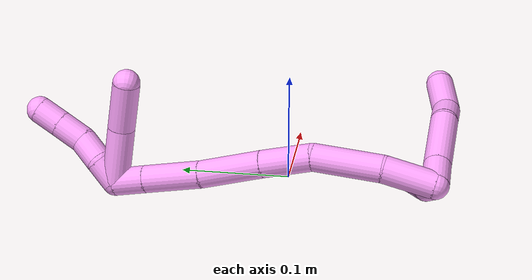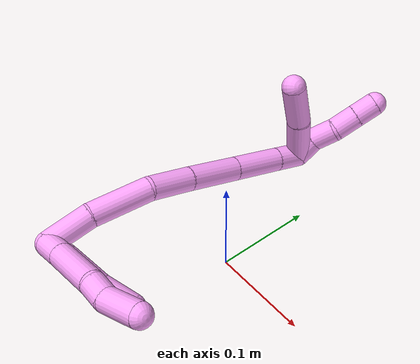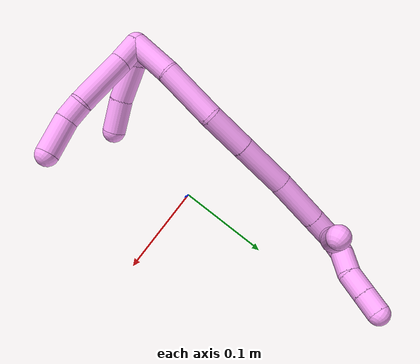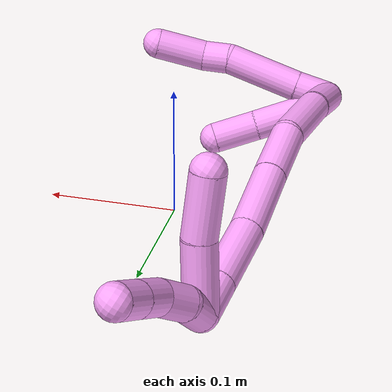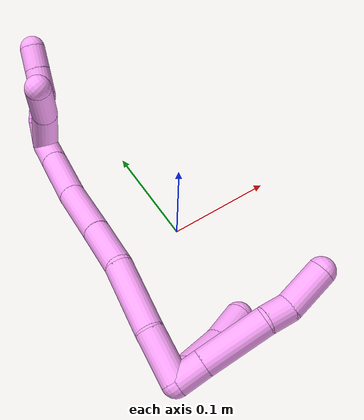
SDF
<sdf version="1.7">
 <world name="default">
  <model name="photoneo_s_sensor">
   <static>1</static>
   <pose>0 0 2 1.57079 1.57079 3.14159</pose>
   <link name="link">
    <inertial><mass>0.1</mass></inertial>
    <sensor name="sensor" type="depth">
     <update_rate>30</update_rate>
     <camera>
      <horizontal_fov>1.22</horizontal_fov>
      <image><width>1920</width><height>1200</height><format>B8G8R8</format></image>
      <clip><near>0.1</near><far>4</far></clip>
      <depth_camera><output>points</output></depth_camera>
     </camera>
     <plugin name="camera_plugin" filename="libgazebo_ros_depth_camera.so">
      <baseline>0.2</baseline>
      <alwaysOn>1</alwaysOn>
      <updateRate>0.0</updateRate>
      <cameraName>camera_ir</cameraName>
      <imageTopicName>/camera/color/image_raw</imageTopicName>
      <cameraInfoTopicName>/camera/color/camera_info</cameraInfoTopicName>
      <depthImageTopicName>/camera/depth/image_raw</depthImageTopicName>
      <depthImageCameraInfoTopicName>/camera/depth/camera_info</depthImageCameraInfoTopicName>
      <pointCloudTopicName>/camera/depth/points</pointCloudTopicName>
      <frameName>fr_optical</frameName>
      <pointCloudCutoff>0.1</pointCloudCutoff>
      <pointCloudCutoffMax>2.0</pointCloudCutoffMax>
      <distortionK1>0</distortionK1>
      <distortionK2>0</distortionK2>
      <distortionK3>0</distortionK3>
      <distortionT1>0</distortionT1>
      <distortionT2>0</distortionT2>
      <CxPrime>0</CxPrime>
      <Cx>0</Cx>
      <Cy>0</Cy>
      <focalLength>0</focalLength>
      <hackBaseline>0</hackBaseline>
     </plugin>
    </sensor>
   </link>
  </model>
  <model name="bin">
   <static>1</static>
   <link name="bottom">
    <collision name="collision-bottom">
     <pose>0 0 -0.01 0 -0 0</pose>
     <geometry><box><size>0.8 0.6 0.02</size></box></geometry>
     <surface>
      <friction><ode><mu>100</mu><mu2>100</mu2></ode></friction>
      <contact><collide_bitmask>65535</collide_bitmask></contact>
     </surface>
    </collision>
   </link>
   <link name="west_wall">
    <collision name="collision-west_wall">
     <pose>-0.41 0 0.1 0 -0 0</pose>
     <geometry><box><size>0.02 0.6 0.2</size></box></geometry>
     <surface>
      <friction><ode><mu>100</mu><mu2>100</mu2></ode></friction>
      <contact><collide_bitmask>65535</collide_bitmask></contact>
     </surface>
    </collision>
   </link>
   <link name="east_wall">
    <collision name="collision-east_wall">
     <pose>0.41 0 0.1 0 -0 0</pose>
     <geometry><box><size>0.02 0.6 0.2</size></box></geometry>
     <surface>
      <friction><ode><mu>100</mu><mu2>100</mu2></ode></friction>
      <contact><collide_bitmask>65535</collide_bitmask></contact>
     </surface>
    </collision>
   </link>
   <link name="south_wall">
    <collision name="collision-south_wall">
     <pose>0 -0.31 0.1 0 -0 0</pose>
     <geometry><box><size>0.8 0.02 0.2</size></box></geometry>
     <surface>
      <friction><ode><mu>100</mu><mu2>100</mu2></ode></friction>
      <contact><collide_bitmask>65535</collide_bitmask></contact>
     </surface>
    </collision>
   </link>
   <link name="north_wall">
    <collision name="collision-north_wall">
     <pose>0 0.31 0.1 0 -0 0</pose>
     <geometry><box><size>0.8 0.02 0.2</size></box></geometry>
     <surface>
      <friction><ode><mu>100</mu><mu2>100</mu2></ode></friction>
      <contact><collide_bitmask>65535</collide_bitmask></contact>
     </surface>
    </collision>
   </link>
  </model>
  <model name="4">
   <static>0</static>
   <link name="4">
    <collision name="collision-cylinder-e_1_2_8">
     <pose>0.002772 -0.002214 0.012858 0.170477 0.209321 0.017951</pose>
     <geometry><cylinder><radius>0.0125</radius><length>0.026677</length></cylinder></geometry>
     <surface>
      <friction><ode><mu>1.16</mu><mu2>1.16</mu2><slip1>0</slip1><slip2>0</slip2></ode></friction>
      <contact><ode><kp>1e+06</kp><kd>1</kd><max_vel>0</max_vel><min_depth>0.001</min_depth></ode></contact>
     </surface>
    </collision>
    <visual name="visual-cylinder-e_1_2_8">
     <pose>0.002772 -0.002214 0.012858 0.170477 0.209321 0.017951</pose>
     <geometry><cylinder><radius>0.0125</radius><length>0.026677</length></cylinder></geometry>
     <material><ambient>1 0.65098 0.996078 1</ambient></material>
    </visual>
    <collision name="collision-cylinder-e_2_8_9">
     <pose>0.010136 -0.009548 0.055001 0.173111 0.153285 0.013327</pose>
     <geometry><cylinder><radius>0.0125</radius><length>0.060163</length></cylinder></geometry>
     <surface>
      <friction><ode><mu>1.16</mu><mu2>1.16</mu2><slip1>0</slip1><slip2>0</slip2></ode></friction>
      <contact><ode><kp>1e+06</kp><kd>1</kd><max_vel>0</max_vel><min_depth>0.001</min_depth></ode></contact>
     </surface>
    </collision>
    <visual name="visual-cylinder-e_2_8_9">
     <pose>0.010136 -0.009548 0.055001 0.173111 0.153285 0.013327</pose>
     <geometry><cylinder><radius>0.0125</radius><length>0.060163</length></cylinder></geometry>
     <material><ambient>1 0.65098 0.996078 1</ambient></material>
    </visual>
    <collision name="collision-cylinder-e_3_9_10">
     <pose>0.018849 -0.018378 0.094191 0.358365 0.371411 0.06803</pose>
     <geometry><cylinder><radius>0.0125</radius><length>0.022702</length></cylinder></geometry>
     <surface>
      <friction><ode><mu>1.16</mu><mu2>1.16</mu2><slip1>0</slip1><slip2>0</slip2></ode></friction>
      <contact><ode><kp>1e+06</kp><kd>1</kd><max_vel>0</max_vel><min_depth>0.001</min_depth></ode></contact>
     </surface>
    </collision>
    <visual name="visual-cylinder-e_3_9_10">
     <pose>0.018849 -0.018378 0.094191 0.358365 0.371411 0.06803</pose>
     <geometry><cylinder><radius>0.0125</radius><length>0.022702</length></cylinder></geometry>
     <material><ambient>1 0.65098 0.996078 1</ambient></material>
    </visual>
    <collision name="collision-cylinder-e_4_10_6">
     <pose>0.029499 -0.021905 0.123241 -0.009555 0.328722 -0.001585</pose>
     <geometry><cylinder><radius>0.0125</radius><length>0.040458</length></cylinder></geometry>
     <surface>
      <friction><ode><mu>1.16</mu><mu2>1.16</mu2><slip1>0</slip1><slip2>0</slip2></ode></friction>
      <contact><ode><kp>1e+06</kp><kd>1</kd><max_vel>0</max_vel><min_depth>0.001</min_depth></ode></contact>
     </surface>
    </collision>
    <visual name="visual-cylinder-e_4_10_6">
     <pose>0.029499 -0.021905 0.123241 -0.009555 0.328722 -0.001585</pose>
     <geometry><cylinder><radius>0.0125</radius><length>0.040458</length></cylinder></geometry>
     <material><ambient>1 0.65098 0.996078 1</ambient></material>
    </visual>
    <collision name="collision-cylinder-e_1_2_11">
     <pose>0.009284 -0.001929 0.004482 0.406489 1.08687 0.247728</pose>
     <geometry><cylinder><radius>0.0125</radius><length>0.020976</length></cylinder></geometry>
     <surface>
      <friction><ode><mu>1.16</mu><mu2>1.16</mu2><slip1>0</slip1><slip2>0</slip2></ode></friction>
      <contact><ode><kp>1e+06</kp><kd>1</kd><max_vel>0</max_vel><min_depth>0.001</min_depth></ode></contact>
     </surface>
    </collision>
    <visual name="visual-cylinder-e_1_2_11">
     <pose>0.009284 -0.001929 0.004482 0.406489 1.08687 0.247728</pose>
     <geometry><cylinder><radius>0.0125</radius><length>0.020976</length></cylinder></geometry>
     <material><ambient>1 0.65098 0.996078 1</ambient></material>
    </visual>
    <collision name="collision-cylinder-e_2_11_12">
     <pose>0.034191 -0.009688 0.022367 0.410249 0.818702 0.180042</pose>
     <geometry><cylinder><radius>0.0125</radius><length>0.042789</length></cylinder></geometry>
     <surface>
      <friction><ode><mu>1.16</mu><mu2>1.16</mu2><slip1>0</slip1><slip2>0</slip2></ode></friction>
      <contact><ode><kp>1e+06</kp><kd>1</kd><max_vel>0</max_vel><min_depth>0.001</min_depth></ode></contact>
     </surface>
    </collision>
    <visual name="visual-cylinder-e_2_11_12">
     <pose>0.034191 -0.009688 0.022367 0.410249 0.818702 0.180042</pose>
     <geometry><cylinder><radius>0.0125</radius><length>0.042789</length></cylinder></geometry>
     <material><ambient>1 0.65098 0.996078 1</ambient></material>
    </visual>
    <collision name="collision-cylinder-e_3_12_5">
     <pose>0.063547 -0.017727 0.047379 0.188094 0.86025 0.086494</pose>
     <geometry><cylinder><radius>0.0125</radius><length>0.036236</length></cylinder></geometry>
     <surface>
      <friction><ode><mu>1.16</mu><mu2>1.16</mu2><slip1>0</slip1><slip2>0</slip2></ode></friction>
      <contact><ode><kp>1e+06</kp><kd>1</kd><max_vel>0</max_vel><min_depth>0.001</min_depth></ode></contact>
     </surface>
    </collision>
    <visual name="visual-cylinder-e_3_12_5">
     <pose>0.063547 -0.017727 0.047379 0.188094 0.86025 0.086494</pose>
     <geometry><cylinder><radius>0.0125</radius><length>0.036236</length></cylinder></geometry>
     <material><ambient>1 0.65098 0.996078 1</ambient></material>
    </visual>
    <collision name="collision-cylinder-e_1_2_13">
     <pose>0.011272 0.020372 0.004197 -1.36764 0.496637 -0.407553</pose>
     <geometry><cylinder><radius>0.0125</radius><length>0.047316</length></cylinder></geometry>
     <surface>
      <friction><ode><mu>1.16</mu><mu2>1.16</mu2><slip1>0</slip1><slip2>0</slip2></ode></friction>
      <contact><ode><kp>1e+06</kp><kd>1</kd><max_vel>0</max_vel><min_depth>0.001</min_depth></ode></contact>
     </surface>
    </collision>
    <visual name="visual-cylinder-e_1_2_13">
     <pose>0.011272 0.020372 0.004197 -1.36764 0.496637 -0.407553</pose>
     <geometry><cylinder><radius>0.0125</radius><length>0.047316</length></cylinder></geometry>
     <material><ambient>1 0.65098 0.996078 1</ambient></material>
    </visual>
    <collision name="collision-cylinder-e_2_13_14">
     <pose>0.042749 0.064754 0.012927 -1.38417 0.690923 -0.579789</pose>
     <geometry><cylinder><radius>0.0125</radius><length>0.063412</length></cylinder></geometry>
     <surface>
      <friction><ode><mu>1.16</mu><mu2>1.16</mu2><slip1>0</slip1><slip2>0</slip2></ode></friction>
      <contact><ode><kp>1e+06</kp><kd>1</kd><max_vel>0</max_vel><min_depth>0.001</min_depth></ode></contact>
     </surface>
    </collision>
    <visual name="visual-cylinder-e_2_13_14">
     <pose>0.042749 0.064754 0.012927 -1.38417 0.690923 -0.579789</pose>
     <geometry><cylinder><radius>0.0125</radius><length>0.063412</length></cylinder></geometry>
     <material><ambient>1 0.65098 0.996078 1</ambient></material>
    </visual>
    <collision name="collision-cylinder-e_3_14_15">
     <pose>0.081776 0.102758 0.016174 -1.66246 0.92948 -1.00502</pose>
     <geometry><cylinder><radius>0.0125</radius><length>0.046979</length></cylinder></geometry>
     <surface>
      <friction><ode><mu>1.16</mu><mu2>1.16</mu2><slip1>0</slip1><slip2>0</slip2></ode></friction>
      <contact><ode><kp>1e+06</kp><kd>1</kd><max_vel>0</max_vel><min_depth>0.001</min_depth></ode></contact>
     </surface>
    </collision>
    <visual name="visual-cylinder-e_3_14_15">
     <pose>0.081776 0.102758 0.016174 -1.66246 0.92948 -1.00502</pose>
     <geometry><cylinder><radius>0.0125</radius><length>0.046979</length></cylinder></geometry>
     <material><ambient>1 0.65098 0.996078 1</ambient></material>
    </visual>
    <collision name="collision-cylinder-e_4_15_16">
     <pose>0.124297 0.13349 0.012786 -1.69573 0.952158 -1.05781</pose>
     <geometry><cylinder><radius>0.0125</radius><length>0.05818</length></cylinder></geometry>
     <surface>
      <friction><ode><mu>1.16</mu><mu2>1.16</mu2><slip1>0</slip1><slip2>0</slip2></ode></friction>
      <contact><ode><kp>1e+06</kp><kd>1</kd><max_vel>0</max_vel><min_depth>0.001</min_depth></ode></contact>
     </surface>
    </collision>
    <visual name="visual-cylinder-e_4_15_16">
     <pose>0.124297 0.13349 0.012786 -1.69573 0.952158 -1.05781</pose>
     <geometry><cylinder><radius>0.0125</radius><length>0.05818</length></cylinder></geometry>
     <material><ambient>1 0.65098 0.996078 1</ambient></material>
    </visual>
    <collision name="collision-cylinder-e_5_16_17">
     <pose>0.169655 0.166212 0.010908 -1.55676 0.935024 -0.923774</pose>
     <geometry><cylinder><radius>0.0125</radius><length>0.053839</length></cylinder></geometry>
     <surface>
      <friction><ode><mu>1.16</mu><mu2>1.16</mu2><slip1>0</slip1><slip2>0</slip2></ode></friction>
      <contact><ode><kp>1e+06</kp><kd>1</kd><max_vel>0</max_vel><min_depth>0.001</min_depth></ode></contact>
     </surface>
    </collision>
    <visual name="visual-cylinder-e_5_16_17">
     <pose>0.169655 0.166212 0.010908 -1.55676 0.935024 -0.923774</pose>
     <geometry><cylinder><radius>0.0125</radius><length>0.053839</length></cylinder></geometry>
     <material><ambient>1 0.65098 0.996078 1</ambient></material>
    </visual>
    <collision name="collision-cylinder-e_6_17_1">
     <pose>0.203544 0.191116 0.011218 -1.56117 0.940519 -0.932766</pose>
     <geometry><cylinder><radius>0.0125</radius><length>0.030275</length></cylinder></geometry>
     <surface>
      <friction><ode><mu>1.16</mu><mu2>1.16</mu2><slip1>0</slip1><slip2>0</slip2></ode></friction>
      <contact><ode><kp>1e+06</kp><kd>1</kd><max_vel>0</max_vel><min_depth>0.001</min_depth></ode></contact>
     </surface>
    </collision>
    <visual name="visual-cylinder-e_6_17_1">
     <pose>0.203544 0.191116 0.011218 -1.56117 0.940519 -0.932766</pose>
     <geometry><cylinder><radius>0.0125</radius><length>0.030275</length></cylinder></geometry>
     <material><ambient>1 0.65098 0.996078 1</ambient></material>
    </visual>
    <collision name="collision-cylinder-e_1_1_18">
     <pose>0.196326 0.211519 0.025855 -0.668021 -0.809386 0.295115</pose>
     <geometry><cylinder><radius>0.0125</radius><length>0.053731</length></cylinder></geometry>
     <surface>
      <friction><ode><mu>1.16</mu><mu2>1.16</mu2><slip1>0</slip1><slip2>0</slip2></ode></friction>
      <contact><ode><kp>1e+06</kp><kd>1</kd><max_vel>0</max_vel><min_depth>0.001</min_depth></ode></contact>
     </surface>
    </collision>
    <visual name="visual-cylinder-e_1_1_18">
     <pose>0.196326 0.211519 0.025855 -0.668021 -0.809386 0.295115</pose>
     <geometry><cylinder><radius>0.0125</radius><length>0.053731</length></cylinder></geometry>
     <material><ambient>1 0.65098 0.996078 1</ambient></material>
    </visual>
    <collision name="collision-cylinder-e_2_18_4">
     <pose>0.158516 0.233317 0.049976 -0.82298 -0.916965 0.424301</pose>
     <geometry><cylinder><radius>0.0125</radius><length>0.046269</length></cylinder></geometry>
     <surface>
      <friction><ode><mu>1.16</mu><mu2>1.16</mu2><slip1>0</slip1><slip2>0</slip2></ode></friction>
      <contact><ode><kp>1e+06</kp><kd>1</kd><max_vel>0</max_vel><min_depth>0.001</min_depth></ode></contact>
     </surface>
    </collision>
    <visual name="visual-cylinder-e_2_18_4">
     <pose>0.158516 0.233317 0.049976 -0.82298 -0.916965 0.424301</pose>
     <geometry><cylinder><radius>0.0125</radius><length>0.046269</length></cylinder></geometry>
     <material><ambient>1 0.65098 0.996078 1</ambient></material>
    </visual>
    <collision name="collision-cylinder-e_1_1_19">
     <pose>0.216094 0.2102 0.018319 -0.966612 0.025991 -0.013641</pose>
     <geometry><cylinder><radius>0.0125</radius><length>0.024705</length></cylinder></geometry>
     <surface>
      <friction><ode><mu>1.16</mu><mu2>1.16</mu2><slip1>0</slip1><slip2>0</slip2></ode></friction>
      <contact><ode><kp>1e+06</kp><kd>1</kd><max_vel>0</max_vel><min_depth>0.001</min_depth></ode></contact>
     </surface>
    </collision>
    <visual name="visual-cylinder-e_1_1_19">
     <pose>0.216094 0.2102 0.018319 -0.966612 0.025991 -0.013641</pose>
     <geometry><cylinder><radius>0.0125</radius><length>0.024705</length></cylinder></geometry>
     <material><ambient>1 0.65098 0.996078 1</ambient></material>
    </visual>
    <collision name="collision-cylinder-e_2_19_20">
     <pose>0.219788 0.228625 0.034295 -0.7449 0.26994 -0.106007</pose>
     <geometry><cylinder><radius>0.0125</radius><length>0.025294</length></cylinder></geometry>
     <surface>
      <friction><ode><mu>1.16</mu><mu2>1.16</mu2><slip1>0</slip1><slip2>0</slip2></ode></friction>
      <contact><ode><kp>1e+06</kp><kd>1</kd><max_vel>0</max_vel><min_depth>0.001</min_depth></ode></contact>
     </surface>
    </collision>
    <visual name="visual-cylinder-e_2_19_20">
     <pose>0.219788 0.228625 0.034295 -0.7449 0.26994 -0.106007</pose>
     <geometry><cylinder><radius>0.0125</radius><length>0.025294</length></cylinder></geometry>
     <material><ambient>1 0.65098 0.996078 1</ambient></material>
    </visual>
    <collision name="collision-cylinder-e_3_20_21">
     <pose>0.227598 0.247658 0.04914 -1.07077 0.346937 -0.20714</pose>
     <geometry><cylinder><radius>0.0125</radius><length>0.026101</length></cylinder></geometry>
     <surface>
      <friction><ode><mu>1.16</mu><mu2>1.16</mu2><slip1>0</slip1><slip2>0</slip2></ode></friction>
      <contact><ode><kp>1e+06</kp><kd>1</kd><max_vel>0</max_vel><min_depth>0.001</min_depth></ode></contact>
     </surface>
    </collision>
    <visual name="visual-cylinder-e_3_20_21">
     <pose>0.227598 0.247658 0.04914 -1.07077 0.346937 -0.20714</pose>
     <geometry><cylinder><radius>0.0125</radius><length>0.026101</length></cylinder></geometry>
     <material><ambient>1 0.65098 0.996078 1</ambient></material>
    </visual>
    <collision name="collision-cylinder-e_4_21_3">
     <pose>0.236179 0.268273 0.060382 -1.07241 0.354148 -0.211895</pose>
     <geometry><cylinder><radius>0.0125</radius><length>0.023899</length></cylinder></geometry>
     <surface>
      <friction><ode><mu>1.16</mu><mu2>1.16</mu2><slip1>0</slip1><slip2>0</slip2></ode></friction>
      <contact><ode><kp>1e+06</kp><kd>1</kd><max_vel>0</max_vel><min_depth>0.001</min_depth></ode></contact>
     </surface>
    </collision>
    <visual name="visual-cylinder-e_4_21_3">
     <pose>0.236179 0.268273 0.060382 -1.07241 0.354148 -0.211895</pose>
     <geometry><cylinder><radius>0.0125</radius><length>0.023899</length></cylinder></geometry>
     <material><ambient>1 0.65098 0.996078 1</ambient></material>
    </visual>
    <collision name="collision-sphere-3">
     <pose>0.240323 0.278118 0.065739 0 -0 0</pose>
     <geometry><sphere><radius>0.0125</radius></sphere></geometry>
     <surface>
      <friction><ode><mu>1.16</mu><mu2>1.16</mu2><slip1>0</slip1><slip2>0</slip2></ode></friction>
      <contact><ode><kp>1e+06</kp><kd>1</kd><max_vel>0</max_vel><min_depth>0.001</min_depth></ode></contact>
     </surface>
    </collision>
    <visual name="visual-sphere-3">
     <pose>0.240323 0.278118 0.065739 0 -0 0</pose>
     <geometry><sphere><radius>0.0125</radius></sphere></geometry>
     <material><ambient>1 0.65098 0.996078 1</ambient></material>
    </visual>
    <collision name="collision-sphere-21">
     <pose>0.232035 0.258429 0.055024 0 -0 0</pose>
     <geometry><sphere><radius>0.0125</radius></sphere></geometry>
     <surface>
      <friction><ode><mu>1.16</mu><mu2>1.16</mu2><slip1>0</slip1><slip2>0</slip2></ode></friction>
      <contact><ode><kp>1e+06</kp><kd>1</kd><max_vel>0</max_vel><min_depth>0.001</min_depth></ode></contact>
     </surface>
    </collision>
    <visual name="visual-sphere-21">
     <pose>0.232035 0.258429 0.055024 0 -0 0</pose>
     <geometry><sphere><radius>0.0125</radius></sphere></geometry>
     <material><ambient>1 0.65098 0.996078 1</ambient></material>
    </visual>
    <collision name="collision-sphere-20">
     <pose>0.22316 0.236888 0.043256 0 -0 0</pose>
     <geometry><sphere><radius>0.0125</radius></sphere></geometry>
     <surface>
      <friction><ode><mu>1.16</mu><mu2>1.16</mu2><slip1>0</slip1><slip2>0</slip2></ode></friction>
      <contact><ode><kp>1e+06</kp><kd>1</kd><max_vel>0</max_vel><min_depth>0.001</min_depth></ode></contact>
     </surface>
    </collision>
    <visual name="visual-sphere-20">
     <pose>0.22316 0.236888 0.043256 0 -0 0</pose>
     <geometry><sphere><radius>0.0125</radius></sphere></geometry>
     <material><ambient>1 0.65098 0.996078 1</ambient></material>
    </visual>
    <collision name="collision-sphere-19">
     <pose>0.216415 0.220362 0.025334 0 -0 0</pose>
     <geometry><sphere><radius>0.0125</radius></sphere></geometry>
     <surface>
      <friction><ode><mu>1.16</mu><mu2>1.16</mu2><slip1>0</slip1><slip2>0</slip2></ode></friction>
      <contact><ode><kp>1e+06</kp><kd>1</kd><max_vel>0</max_vel><min_depth>0.001</min_depth></ode></contact>
     </surface>
    </collision>
    <visual name="visual-sphere-19">
     <pose>0.216415 0.220362 0.025334 0 -0 0</pose>
     <geometry><sphere><radius>0.0125</radius></sphere></geometry>
     <material><ambient>1 0.65098 0.996078 1</ambient></material>
    </visual>
    <collision name="collision-sphere-11">
     <pose>0.018567 -0.003859 0.008964 0 -0 0</pose>
     <geometry><sphere><radius>0.0125</radius></sphere></geometry>
     <surface>
      <friction><ode><mu>1.16</mu><mu2>1.16</mu2><slip1>0</slip1><slip2>0</slip2></ode></friction>
      <contact><ode><kp>1e+06</kp><kd>1</kd><max_vel>0</max_vel><min_depth>0.001</min_depth></ode></contact>
     </surface>
    </collision>
    <visual name="visual-sphere-11">
     <pose>0.018567 -0.003859 0.008964 0 -0 0</pose>
     <geometry><sphere><radius>0.0125</radius></sphere></geometry>
     <material><ambient>1 0.65098 0.996078 1</ambient></material>
    </visual>
    <collision name="collision-sphere-6">
     <pose>0.03603 -0.021722 0.142386 0 -0 0</pose>
     <geometry><sphere><radius>0.0125</radius></sphere></geometry>
     <surface>
      <friction><ode><mu>1.16</mu><mu2>1.16</mu2><slip1>0</slip1><slip2>0</slip2></ode></friction>
      <contact><ode><kp>1e+06</kp><kd>1</kd><max_vel>0</max_vel><min_depth>0.001</min_depth></ode></contact>
     </surface>
    </collision>
    <visual name="visual-sphere-6">
     <pose>0.03603 -0.021722 0.142386 0 -0 0</pose>
     <geometry><sphere><radius>0.0125</radius></sphere></geometry>
     <material><ambient>1 0.65098 0.996078 1</ambient></material>
    </visual>
    <collision name="collision-sphere-10">
     <pose>0.022969 -0.022088 0.104096 0 -0 0</pose>
     <geometry><sphere><radius>0.0125</radius></sphere></geometry>
     <surface>
      <friction><ode><mu>1.16</mu><mu2>1.16</mu2><slip1>0</slip1><slip2>0</slip2></ode></friction>
      <contact><ode><kp>1e+06</kp><kd>1</kd><max_vel>0</max_vel><min_depth>0.001</min_depth></ode></contact>
     </surface>
    </collision>
    <visual name="visual-sphere-10">
     <pose>0.022969 -0.022088 0.104096 0 -0 0</pose>
     <geometry><sphere><radius>0.0125</radius></sphere></geometry>
     <material><ambient>1 0.65098 0.996078 1</ambient></material>
    </visual>
    <collision name="collision-sphere-9">
     <pose>0.014729 -0.014669 0.084286 0 -0 0</pose>
     <geometry><sphere><radius>0.0125</radius></sphere></geometry>
     <surface>
      <friction><ode><mu>1.16</mu><mu2>1.16</mu2><slip1>0</slip1><slip2>0</slip2></ode></friction>
      <contact><ode><kp>1e+06</kp><kd>1</kd><max_vel>0</max_vel><min_depth>0.001</min_depth></ode></contact>
     </surface>
    </collision>
    <visual name="visual-sphere-9">
     <pose>0.014729 -0.014669 0.084286 0 -0 0</pose>
     <geometry><sphere><radius>0.0125</radius></sphere></geometry>
     <material><ambient>1 0.65098 0.996078 1</ambient></material>
    </visual>
    <collision name="collision-sphere-2">
     <geometry><sphere><radius>0.0125</radius></sphere></geometry>
     <surface>
      <friction><ode><mu>1.16</mu><mu2>1.16</mu2><slip1>0</slip1><slip2>0</slip2></ode></friction>
      <contact><ode><kp>1e+06</kp><kd>1</kd><max_vel>0</max_vel><min_depth>0.001</min_depth></ode></contact>
     </surface>
    </collision>
    <visual name="visual-sphere-2">
     <geometry><sphere><radius>0.0125</radius></sphere></geometry>
     <material><ambient>1 0.65098 0.996078 1</ambient></material>
    </visual>
    <collision name="collision-sphere-8">
     <pose>0.005543 -0.004427 0.025717 0 -0 0</pose>
     <geometry><sphere><radius>0.0125</radius></sphere></geometry>
     <surface>
      <friction><ode><mu>1.16</mu><mu2>1.16</mu2><slip1>0</slip1><slip2>0</slip2></ode></friction>
      <contact><ode><kp>1e+06</kp><kd>1</kd><max_vel>0</max_vel><min_depth>0.001</min_depth></ode></contact>
     </surface>
    </collision>
    <visual name="visual-sphere-8">
     <pose>0.005543 -0.004427 0.025717 0 -0 0</pose>
     <geometry><sphere><radius>0.0125</radius></sphere></geometry>
     <material><ambient>1 0.65098 0.996078 1</ambient></material>
    </visual>
    <collision name="collision-sphere-12">
     <pose>0.049814 -0.015517 0.03577 0 -0 0</pose>
     <geometry><sphere><radius>0.0125</radius></sphere></geometry>
     <surface>
      <friction><ode><mu>1.16</mu><mu2>1.16</mu2><slip1>0</slip1><slip2>0</slip2></ode></friction>
      <contact><ode><kp>1e+06</kp><kd>1</kd><max_vel>0</max_vel><min_depth>0.001</min_depth></ode></contact>
     </surface>
    </collision>
    <visual name="visual-sphere-12">
     <pose>0.049814 -0.015517 0.03577 0 -0 0</pose>
     <geometry><sphere><radius>0.0125</radius></sphere></geometry>
     <material><ambient>1 0.65098 0.996078 1</ambient></material>
    </visual>
    <collision name="collision-sphere-5">
     <pose>0.077281 -0.019937 0.058988 0 -0 0</pose>
     <geometry><sphere><radius>0.0125</radius></sphere></geometry>
     <surface>
      <friction><ode><mu>1.16</mu><mu2>1.16</mu2><slip1>0</slip1><slip2>0</slip2></ode></friction>
      <contact><ode><kp>1e+06</kp><kd>1</kd><max_vel>0</max_vel><min_depth>0.001</min_depth></ode></contact>
     </surface>
    </collision>
    <visual name="visual-sphere-5">
     <pose>0.077281 -0.019937 0.058988 0 -0 0</pose>
     <geometry><sphere><radius>0.0125</radius></sphere></geometry>
     <material><ambient>1 0.65098 0.996078 1</ambient></material>
    </visual>
    <collision name="collision-sphere-13">
     <pose>0.022545 0.040744 0.008393 0 -0 0</pose>
     <geometry><sphere><radius>0.0125</radius></sphere></geometry>
     <surface>
      <friction><ode><mu>1.16</mu><mu2>1.16</mu2><slip1>0</slip1><slip2>0</slip2></ode></friction>
      <contact><ode><kp>1e+06</kp><kd>1</kd><max_vel>0</max_vel><min_depth>0.001</min_depth></ode></contact>
     </surface>
    </collision>
    <visual name="visual-sphere-13">
     <pose>0.022545 0.040744 0.008393 0 -0 0</pose>
     <geometry><sphere><radius>0.0125</radius></sphere></geometry>
     <material><ambient>1 0.65098 0.996078 1</ambient></material>
    </visual>
    <collision name="collision-sphere-14">
     <pose>0.062954 0.088764 0.01746 0 -0 0</pose>
     <geometry><sphere><radius>0.0125</radius></sphere></geometry>
     <surface>
      <friction><ode><mu>1.16</mu><mu2>1.16</mu2><slip1>0</slip1><slip2>0</slip2></ode></friction>
      <contact><ode><kp>1e+06</kp><kd>1</kd><max_vel>0</max_vel><min_depth>0.001</min_depth></ode></contact>
     </surface>
    </collision>
    <visual name="visual-sphere-14">
     <pose>0.062954 0.088764 0.01746 0 -0 0</pose>
     <geometry><sphere><radius>0.0125</radius></sphere></geometry>
     <material><ambient>1 0.65098 0.996078 1</ambient></material>
    </visual>
    <collision name="collision-sphere-15">
     <pose>0.100598 0.116752 0.014888 0 -0 0</pose>
     <geometry><sphere><radius>0.0125</radius></sphere></geometry>
     <surface>
      <friction><ode><mu>1.16</mu><mu2>1.16</mu2><slip1>0</slip1><slip2>0</slip2></ode></friction>
      <contact><ode><kp>1e+06</kp><kd>1</kd><max_vel>0</max_vel><min_depth>0.001</min_depth></ode></contact>
     </surface>
    </collision>
    <visual name="visual-sphere-15">
     <pose>0.100598 0.116752 0.014888 0 -0 0</pose>
     <geometry><sphere><radius>0.0125</radius></sphere></geometry>
     <material><ambient>1 0.65098 0.996078 1</ambient></material>
    </visual>
    <collision name="collision-sphere-16">
     <pose>0.147996 0.150229 0.010683 0 -0 0</pose>
     <geometry><sphere><radius>0.0125</radius></sphere></geometry>
     <surface>
      <friction><ode><mu>1.16</mu><mu2>1.16</mu2><slip1>0</slip1><slip2>0</slip2></ode></friction>
      <contact><ode><kp>1e+06</kp><kd>1</kd><max_vel>0</max_vel><min_depth>0.001</min_depth></ode></contact>
     </surface>
    </collision>
    <visual name="visual-sphere-16">
     <pose>0.147996 0.150229 0.010683 0 -0 0</pose>
     <geometry><sphere><radius>0.0125</radius></sphere></geometry>
     <material><ambient>1 0.65098 0.996078 1</ambient></material>
    </visual>
    <collision name="collision-sphere-17">
     <pose>0.191315 0.182195 0.011132 0 -0 0</pose>
     <geometry><sphere><radius>0.0125</radius></sphere></geometry>
     <surface>
      <friction><ode><mu>1.16</mu><mu2>1.16</mu2><slip1>0</slip1><slip2>0</slip2></ode></friction>
      <contact><ode><kp>1e+06</kp><kd>1</kd><max_vel>0</max_vel><min_depth>0.001</min_depth></ode></contact>
     </surface>
    </collision>
    <visual name="visual-sphere-17">
     <pose>0.191315 0.182195 0.011132 0 -0 0</pose>
     <geometry><sphere><radius>0.0125</radius></sphere></geometry>
     <material><ambient>1 0.65098 0.996078 1</ambient></material>
    </visual>
    <collision name="collision-sphere-1">
     <pose>0.215773 0.200037 0.011304 0 -0 0</pose>
     <geometry><sphere><radius>0.0125</radius></sphere></geometry>
     <surface>
      <friction><ode><mu>1.16</mu><mu2>1.16</mu2><slip1>0</slip1><slip2>0</slip2></ode></friction>
      <contact><ode><kp>1e+06</kp><kd>1</kd><max_vel>0</max_vel><min_depth>0.001</min_depth></ode></contact>
     </surface>
    </collision>
    <visual name="visual-sphere-1">
     <pose>0.215773 0.200037 0.011304 0 -0 0</pose>
     <geometry><sphere><radius>0.0125</radius></sphere></geometry>
     <material><ambient>1 0.65098 0.996078 1</ambient></material>
    </visual>
    <collision name="collision-sphere-18">
     <pose>0.176879 0.223 0.040407 0 -0 0</pose>
     <geometry><sphere><radius>0.0125</radius></sphere></geometry>
     <surface>
      <friction><ode><mu>1.16</mu><mu2>1.16</mu2><slip1>0</slip1><slip2>0</slip2></ode></friction>
      <contact><ode><kp>1e+06</kp><kd>1</kd><max_vel>0</max_vel><min_depth>0.001</min_depth></ode></contact>
     </surface>
    </collision>
    <visual name="visual-sphere-18">
     <pose>0.176879 0.223 0.040407 0 -0 0</pose>
     <geometry><sphere><radius>0.0125</radius></sphere></geometry>
     <material><ambient>1 0.65098 0.996078 1</ambient></material>
    </visual>
    <collision name="collision-sphere-4">
     <pose>0.140153 0.243634 0.059545 0 -0 0</pose>
     <geometry><sphere><radius>0.0125</radius></sphere></geometry>
     <surface>
      <friction><ode><mu>1.16</mu><mu2>1.16</mu2><slip1>0</slip1><slip2>0</slip2></ode></friction>
      <contact><ode><kp>1e+06</kp><kd>1</kd><max_vel>0</max_vel><min_depth>0.001</min_depth></ode></contact>
     </surface>
    </collision>
    <visual name="visual-sphere-4">
     <pose>0.140153 0.243634 0.059545 0 -0 0</pose>
     <geometry><sphere><radius>0.0125</radius></sphere></geometry>
     <material><ambient>1 0.65098 0.996078 1</ambient></material>
    </visual>
    <inertial>
     <pose>0.101661 0.100502 0.032987 0 -0 0</pose>
     <mass>0.75</mass>
     <inertia>
      <ixx>9.5e-05</ixx>
      <ixy>0</ixy>
      <ixz>0</ixz>
      <iyy>0.000111</iyy>
      <iyz>0</iyz>
      <izz>-0.000101</izz>
     </inertia>
    </inertial>
   </link>
   <pose>-0.093128 -0.139288 0.046305 0.82494 0.747145 1.00601</pose>
  </model>
 </world>
</sdf>
